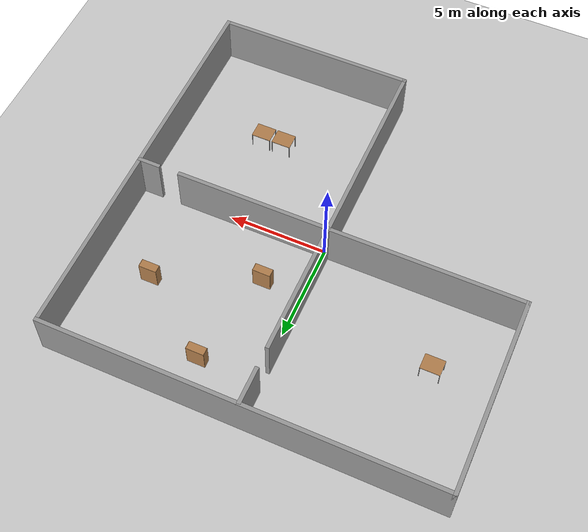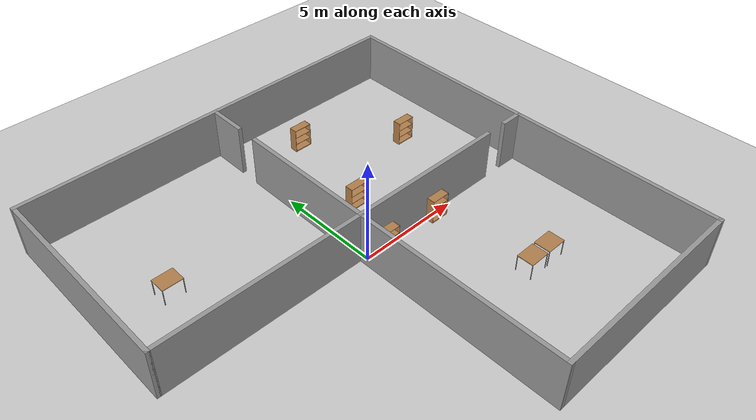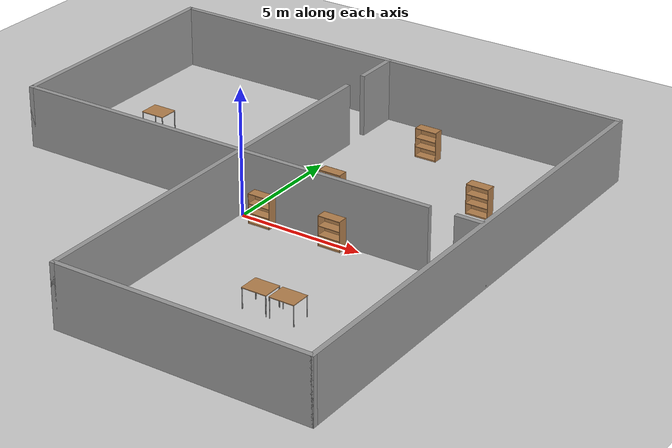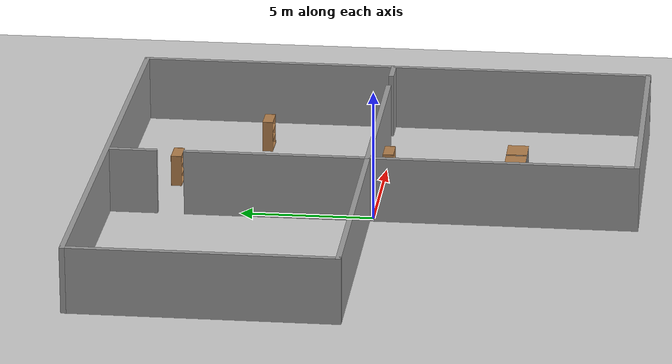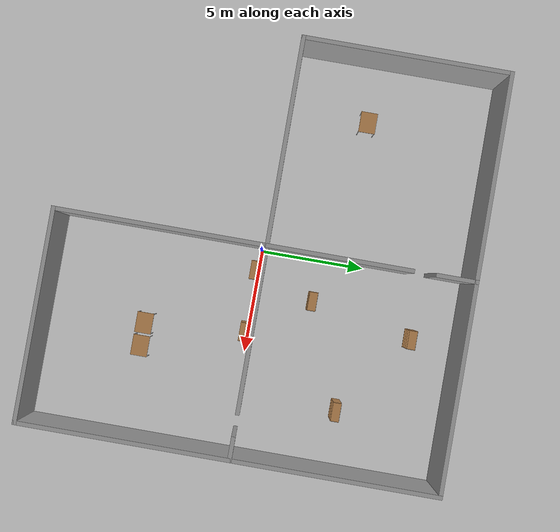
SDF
<sdf version="1.4">
 <world name="default">
  <light name="sun" type="directional">
   <pose>0 0 10 0 -0 0</pose>
   <diffuse>0.8 0.8 0.8 1</diffuse>
   <specular>0.2 0.2 0.2 1</specular>
   <attenuation>
    <range>1000</range>
    <constant>0.9</constant>
    <linear>0.01</linear>
    <quadratic>0.001</quadratic>
   </attenuation>
   <direction>-0.5 0.1 -0.9</direction>
  </light>
  <model name="ground_plane">
   <static>1</static>
   <link name="link">
    <collision name="collision">
     <geometry><plane><normal>0 0 1</normal><size>100 100</size></plane></geometry>
     <surface><friction><ode><mu>100</mu><mu2>50</mu2></ode></friction></surface>
    </collision>
    <visual name="visual">
     <cast_shadows>0</cast_shadows>
     <geometry><plane><normal>0 0 1</normal><size>100 100</size></plane></geometry>
     <material>
      <script><uri>file://media/materials/scripts/gazebo.material</uri><name>Gazebo/Grey</name></script>
     </material>
    </visual>
    <velocity_decay><linear>0</linear><angular>0</angular></velocity_decay>
   </link>
  </model>
  <physics type="ode">
   <max_step_size>0.001</max_step_size>
   <real_time_factor>1</real_time_factor>
   <real_time_update_rate>1000</real_time_update_rate>
   <gravity>0 0 -9.8</gravity>
  </physics>
  <scene><ambient>0.4 0.4 0.4 1</ambient><background>0.7 0.7 0.7 1</background><shadows>1</shadows></scene>
  <spherical_coordinates>
   <surface_model>EARTH_WGS84</surface_model>
   <latitude_deg>0</latitude_deg>
   <longitude_deg>0</longitude_deg>
   <elevation>0</elevation>
   <heading_deg>0</heading_deg>
  </spherical_coordinates>
  <model name="lshape">
   <link name="Wall_0">
    <collision name="Wall_0_Collision">
     <geometry><box><size>20 0.2 2.5</size></box></geometry>
     <pose>0 0 1.25 0 -0 0</pose>
    </collision>
    <visual name="Wall_0_Visual">
     <pose>0 0 1.25 0 -0 0</pose>
     <geometry><box><size>20 0.2 2.5</size></box></geometry>
     <material>
      <script><uri>file://media/materials/scripts/gazebo.material</uri><name>Gazebo/Grey</name></script>
     </material>
    </visual>
    <velocity_decay><linear>0</linear><angular>0</angular></velocity_decay>
    <pose>-0.1 10 0 0 -0 0</pose>
   </link>
   <link name="Wall_10">
    <collision name="Wall_10_Collision">
     <geometry><box><size>10.2 0.2 2.5</size></box></geometry>
     <pose>0 0 1.25 0 -0 0</pose>
    </collision>
    <visual name="Wall_10_Visual">
     <pose>0 0 1.25 0 -0 0</pose>
     <geometry><box><size>10.2 0.2 2.5</size></box></geometry>
     <material>
      <script><uri>file://media/materials/scripts/gazebo.material</uri><name>Gazebo/Grey</name></script>
     </material>
    </visual>
    <velocity_decay><linear>0</linear><angular>0</angular></velocity_decay>
    <pose>4.8 -9.8 0 0 -0 0</pose>
   </link>
   <link name="Wall_12">
    <collision name="Wall_12_Collision">
     <geometry><box><size>7 0.2 2.5</size></box></geometry>
     <pose>0 0 1.25 0 -0 0</pose>
    </collision>
    <visual name="Wall_12_Visual">
     <pose>0 0 1.25 0 -0 0</pose>
     <geometry><box><size>7 0.2 2.5</size></box></geometry>
     <material>
      <script><uri>file://media/materials/scripts/gazebo.material</uri><name>Gazebo/Grey</name></script>
     </material>
    </visual>
    <velocity_decay><linear>0</linear><angular>0</angular></velocity_decay>
    <pose>-0.2 3.6 0 0 -0 1.5708</pose>
   </link>
   <link name="Wall_14">
    <collision name="Wall_14_Collision">
     <geometry><box><size>2 0.2 2.5</size></box></geometry>
     <pose>0 0 1.25 0 -0 0</pose>
    </collision>
    <visual name="Wall_14_Visual">
     <pose>0 0 1.25 0 -0 0</pose>
     <geometry><box><size>2 0.2 2.5</size></box></geometry>
     <material>
      <script><uri>file://media/materials/scripts/gazebo.material</uri><name>Gazebo/Grey</name></script>
     </material>
    </visual>
    <velocity_decay><linear>0</linear><angular>0</angular></velocity_decay>
    <pose>-0.2 9.1 0 0 0 -1.5708</pose>
   </link>
   <link name="Wall_16">
    <collision name="Wall_16_Collision">
     <geometry><box><size>8 0.2 2.5</size></box></geometry>
     <pose>0 0 1.25 0 -0 0</pose>
    </collision>
    <visual name="Wall_16_Visual">
     <pose>0 0 1.25 0 -0 0</pose>
     <geometry><box><size>8 0.2 2.5</size></box></geometry>
     <material>
      <script><uri>file://media/materials/scripts/gazebo.material</uri><name>Gazebo/Grey</name></script>
     </material>
    </visual>
    <velocity_decay><linear>0</linear><angular>0</angular></velocity_decay>
    <pose>3.7 0.2 0 0 -0 0</pose>
   </link>
   <link name="Wall_18">
    <collision name="Wall_18_Collision">
     <geometry><box><size>1.2 0.2 2.5</size></box></geometry>
     <pose>0 0 1.25 0 -0 0</pose>
    </collision>
    <visual name="Wall_18_Visual">
     <pose>0 0 1.25 0 -0 0</pose>
     <geometry><box><size>1.2 0.2 2.5</size></box></geometry>
     <material>
      <script><uri>file://media/materials/scripts/gazebo.material</uri><name>Gazebo/Grey</name></script>
     </material>
    </visual>
    <velocity_decay><linear>0</linear><angular>0</angular></velocity_decay>
    <pose>9.3 0.2 0 0 -0 0</pose>
   </link>
   <link name="Wall_2">
    <collision name="Wall_2_Collision">
     <geometry><box><size>20 0.2 2.5</size></box></geometry>
     <pose>0 0 1.25 0 -0 0</pose>
    </collision>
    <visual name="Wall_2_Visual">
     <pose>0 0 1.25 0 -0 0</pose>
     <geometry><box><size>20 0.2 2.5</size></box></geometry>
     <material>
      <script><uri>file://media/materials/scripts/gazebo.material</uri><name>Gazebo/Grey</name></script>
     </material>
    </visual>
    <velocity_decay><linear>0</linear><angular>0</angular></velocity_decay>
    <pose>9.8 0.1 0 0 0 -1.5708</pose>
   </link>
   <link name="Wall_4">
    <collision name="Wall_4_Collision">
     <geometry><box><size>10 0.2 2.5</size></box></geometry>
     <pose>0 0 1.25 0 -0 0</pose>
    </collision>
    <visual name="Wall_4_Visual">
     <pose>0 0 1.25 0 -0 0</pose>
     <geometry><box><size>10 0.2 2.5</size></box></geometry>
     <material>
      <script><uri>file://media/materials/scripts/gazebo.material</uri><name>Gazebo/Grey</name></script>
     </material>
    </visual>
    <velocity_decay><linear>0</linear><angular>0</angular></velocity_decay>
    <pose>-10 5.1 0 0 0 -1.5708</pose>
   </link>
   <link name="Wall_6">
    <collision name="Wall_6_Collision">
     <geometry><box><size>10 0.2 2.5</size></box></geometry>
     <pose>0 0 1.25 0 -0 0</pose>
    </collision>
    <visual name="Wall_6_Visual">
     <pose>0 0 1.25 0 -0 0</pose>
     <geometry><box><size>10 0.2 2.5</size></box></geometry>
     <material>
      <script><uri>file://media/materials/scripts/gazebo.material</uri><name>Gazebo/Grey</name></script>
     </material>
    </visual>
    <velocity_decay><linear>0</linear><angular>0</angular></velocity_decay>
    <pose>-5.1 0.2 0 0 -0 0</pose>
   </link>
   <link name="Wall_8">
    <collision name="Wall_8_Collision">
     <geometry><box><size>10.2 0.2 2.5</size></box></geometry>
     <pose>0 0 1.25 0 -0 0</pose>
    </collision>
    <visual name="Wall_8_Visual">
     <pose>0 0 1.25 0 -0 0</pose>
     <geometry><box><size>10.2 0.2 2.5</size></box></geometry>
     <material>
      <script><uri>file://media/materials/scripts/gazebo.material</uri><name>Gazebo/Grey</name></script>
     </material>
    </visual>
    <velocity_decay><linear>0</linear><angular>0</angular></velocity_decay>
    <pose>-0.2 -4.8 0 0 0 -1.5708</pose>
   </link>
   <static>1</static>
  </model>
  <model name="table">
   <static>1</static>
   <link name="link">
    <collision name="surface">
     <pose>0 0 0.8 0 -0 0</pose>
     <geometry><box><size>1 0.8 0.03</size></box></geometry>
    </collision>
    <visual name="visual1">
     <pose>0 0 0.8 0 -0 0</pose>
     <geometry><box><size>1 0.8 0.03</size></box></geometry>
     <material>
      <script><uri>file://media/materials/scripts/gazebo.material</uri><name>Gazebo/Wood</name></script>
     </material>
    </visual>
    <collision name="front_left_leg">
     <pose>0.48 0.38 0.4 0 -0 0</pose>
     <geometry><cylinder><radius>0.02</radius><length>0.8</length></cylinder></geometry>
    </collision>
    <visual name="front_left_leg">
     <pose>0.48 0.38 0.4 0 -0 0</pose>
     <geometry><cylinder><radius>0.02</radius><length>0.8</length></cylinder></geometry>
     <material>
      <script><uri>file://media/materials/scripts/gazebo.material</uri><name>Gazebo/Grey</name></script>
     </material>
    </visual>
    <collision name="front_right_leg">
     <pose>0.48 -0.38 0.4 0 -0 0</pose>
     <geometry><cylinder><radius>0.02</radius><length>0.8</length></cylinder></geometry>
    </collision>
    <visual name="front_right_leg">
     <pose>0.48 -0.38 0.4 0 -0 0</pose>
     <geometry><cylinder><radius>0.02</radius><length>0.8</length></cylinder></geometry>
     <material>
      <script><uri>file://media/materials/scripts/gazebo.material</uri><name>Gazebo/Grey</name></script>
     </material>
    </visual>
    <collision name="back_right_leg">
     <pose>-0.48 -0.38 0.4 0 -0 0</pose>
     <geometry><cylinder><radius>0.02</radius><length>0.8</length></cylinder></geometry>
    </collision>
    <visual name="back_right_leg">
     <pose>-0.48 -0.38 0.4 0 -0 0</pose>
     <geometry><cylinder><radius>0.02</radius><length>0.8</length></cylinder></geometry>
     <material>
      <script><uri>file://media/materials/scripts/gazebo.material</uri><name>Gazebo/Grey</name></script>
     </material>
    </visual>
    <collision name="back_left_leg">
     <pose>-0.48 0.38 0.4 0 -0 0</pose>
     <geometry><cylinder><radius>0.02</radius><length>0.8</length></cylinder></geometry>
    </collision>
    <visual name="back_left_leg">
     <pose>-0.48 0.38 0.4 0 -0 0</pose>
     <geometry><cylinder><radius>0.02</radius><length>0.8</length></cylinder></geometry>
     <material>
      <script><uri>file://media/materials/scripts/gazebo.material</uri><name>Gazebo/Grey</name></script>
     </material>
    </visual>
    <velocity_decay><linear>0</linear><angular>0</angular></velocity_decay>
   </link>
   <pose>-7 4 0 0 -0 0</pose>
  </model>
  <model name="table_0">
   <static>1</static>
   <link name="link">
    <collision name="surface">
     <pose>0 0 0.8 0 -0 0</pose>
     <geometry><box><size>1 0.8 0.03</size></box></geometry>
    </collision>
    <visual name="visual1">
     <pose>0 0 0.8 0 -0 0</pose>
     <geometry><box><size>1 0.8 0.03</size></box></geometry>
     <material>
      <script><uri>file://media/materials/scripts/gazebo.material</uri><name>Gazebo/Wood</name></script>
     </material>
    </visual>
    <collision name="front_left_leg">
     <pose>0.48 0.38 0.4 0 -0 0</pose>
     <geometry><cylinder><radius>0.02</radius><length>0.8</length></cylinder></geometry>
    </collision>
    <visual name="front_left_leg">
     <pose>0.48 0.38 0.4 0 -0 0</pose>
     <geometry><cylinder><radius>0.02</radius><length>0.8</length></cylinder></geometry>
     <material>
      <script><uri>file://media/materials/scripts/gazebo.material</uri><name>Gazebo/Grey</name></script>
     </material>
    </visual>
    <collision name="front_right_leg">
     <pose>0.48 -0.38 0.4 0 -0 0</pose>
     <geometry><cylinder><radius>0.02</radius><length>0.8</length></cylinder></geometry>
    </collision>
    <visual name="front_right_leg">
     <pose>0.48 -0.38 0.4 0 -0 0</pose>
     <geometry><cylinder><radius>0.02</radius><length>0.8</length></cylinder></geometry>
     <material>
      <script><uri>file://media/materials/scripts/gazebo.material</uri><name>Gazebo/Grey</name></script>
     </material>
    </visual>
    <collision name="back_right_leg">
     <pose>-0.48 -0.38 0.4 0 -0 0</pose>
     <geometry><cylinder><radius>0.02</radius><length>0.8</length></cylinder></geometry>
    </collision>
    <visual name="back_right_leg">
     <pose>-0.48 -0.38 0.4 0 -0 0</pose>
     <geometry><cylinder><radius>0.02</radius><length>0.8</length></cylinder></geometry>
     <material>
      <script><uri>file://media/materials/scripts/gazebo.material</uri><name>Gazebo/Grey</name></script>
     </material>
    </visual>
    <collision name="back_left_leg">
     <pose>-0.48 0.38 0.4 0 -0 0</pose>
     <geometry><cylinder><radius>0.02</radius><length>0.8</length></cylinder></geometry>
    </collision>
    <visual name="back_left_leg">
     <pose>-0.48 0.38 0.4 0 -0 0</pose>
     <geometry><cylinder><radius>0.02</radius><length>0.8</length></cylinder></geometry>
     <material>
      <script><uri>file://media/materials/scripts/gazebo.material</uri><name>Gazebo/Grey</name></script>
     </material>
    </visual>
    <velocity_decay><linear>0</linear><angular>0</angular></velocity_decay>
   </link>
   <pose>5.5324 -5 0 0 -0 0</pose>
  </model>
  <model name="table_1">
   <static>1</static>
   <link name="link">
    <collision name="surface">
     <pose>0 0 0.8 0 -0 0</pose>
     <geometry><box><size>1 0.8 0.03</size></box></geometry>
    </collision>
    <visual name="visual1">
     <pose>0 0 0.8 0 -0 0</pose>
     <geometry><box><size>1 0.8 0.03</size></box></geometry>
     <material>
      <script><uri>file://media/materials/scripts/gazebo.material</uri><name>Gazebo/Wood</name></script>
     </material>
    </visual>
    <collision name="front_left_leg">
     <pose>0.48 0.38 0.4 0 -0 0</pose>
     <geometry><cylinder><radius>0.02</radius><length>0.8</length></cylinder></geometry>
    </collision>
    <visual name="front_left_leg">
     <pose>0.48 0.38 0.4 0 -0 0</pose>
     <geometry><cylinder><radius>0.02</radius><length>0.8</length></cylinder></geometry>
     <material>
      <script><uri>file://media/materials/scripts/gazebo.material</uri><name>Gazebo/Grey</name></script>
     </material>
    </visual>
    <collision name="front_right_leg">
     <pose>0.48 -0.38 0.4 0 -0 0</pose>
     <geometry><cylinder><radius>0.02</radius><length>0.8</length></cylinder></geometry>
    </collision>
    <visual name="front_right_leg">
     <pose>0.48 -0.38 0.4 0 -0 0</pose>
     <geometry><cylinder><radius>0.02</radius><length>0.8</length></cylinder></geometry>
     <material>
      <script><uri>file://media/materials/scripts/gazebo.material</uri><name>Gazebo/Grey</name></script>
     </material>
    </visual>
    <collision name="back_right_leg">
     <pose>-0.48 -0.38 0.4 0 -0 0</pose>
     <geometry><cylinder><radius>0.02</radius><length>0.8</length></cylinder></geometry>
    </collision>
    <visual name="back_right_leg">
     <pose>-0.48 -0.38 0.4 0 -0 0</pose>
     <geometry><cylinder><radius>0.02</radius><length>0.8</length></cylinder></geometry>
     <material>
      <script><uri>file://media/materials/scripts/gazebo.material</uri><name>Gazebo/Grey</name></script>
     </material>
    </visual>
    <collision name="back_left_leg">
     <pose>-0.48 0.38 0.4 0 -0 0</pose>
     <geometry><cylinder><radius>0.02</radius><length>0.8</length></cylinder></geometry>
    </collision>
    <visual name="back_left_leg">
     <pose>-0.48 0.38 0.4 0 -0 0</pose>
     <geometry><cylinder><radius>0.02</radius><length>0.8</length></cylinder></geometry>
     <material>
      <script><uri>file://media/materials/scripts/gazebo.material</uri><name>Gazebo/Grey</name></script>
     </material>
    </visual>
    <velocity_decay><linear>0</linear><angular>0</angular></velocity_decay>
   </link>
   <pose>4.42389 -5 0 0 -0 0</pose>
  </model>
  <model name="bookshelf">
   <static>1</static>
   <link name="link">
    <inertial><mass>1</mass></inertial>
    <collision name="back">
     <pose>0 0.005 0.6 0 -0 0</pose>
     <geometry><box><size>0.9 0.01 1.2</size></box></geometry>
    </collision>
    <visual name="visual1">
     <pose>0 0.005 0.6 0 -0 0</pose>
     <geometry><box><size>0.9 0.01 1.2</size></box></geometry>
     <material>
      <script><uri>file://media/materials/scripts/gazebo.material</uri><name>Gazebo/Wood</name></script>
     </material>
    </visual>
    <collision name="left_side">
     <pose>0.45 -0.195 0.6 0 -0 0</pose>
     <geometry><box><size>0.02 0.4 1.2</size></box></geometry>
    </collision>
    <visual name="visual2">
     <pose>0.45 -0.195 0.6 0 -0 0</pose>
     <geometry><box><size>0.02 0.4 1.2</size></box></geometry>
     <material>
      <script><uri>file://media/materials/scripts/gazebo.material</uri><name>Gazebo/Wood</name></script>
     </material>
    </visual>
    <collision name="right_side">
     <pose>-0.45 -0.195 0.6 0 -0 0</pose>
     <geometry><box><size>0.02 0.4 1.2</size></box></geometry>
    </collision>
    <visual name="visual3">
     <pose>-0.45 -0.195 0.6 0 -0 0</pose>
     <geometry><box><size>0.02 0.4 1.2</size></box></geometry>
     <material>
      <script><uri>file://media/materials/scripts/gazebo.material</uri><name>Gazebo/Wood</name></script>
     </material>
    </visual>
    <collision name="bottom">
     <pose>0 -0.195 0.03 0 -0 0</pose>
     <geometry><box><size>0.88 0.4 0.06</size></box></geometry>
    </collision>
    <visual name="visual4">
     <pose>0 -0.195 0.03 0 -0 0</pose>
     <geometry><box><size>0.88 0.4 0.06</size></box></geometry>
     <material>
      <script><uri>file://media/materials/scripts/gazebo.material</uri><name>Gazebo/Wood</name></script>
     </material>
    </visual>
    <collision name="top">
     <pose>0 -0.195 1.19 0 -0 0</pose>
     <geometry><box><size>0.88 0.4 0.02</size></box></geometry>
    </collision>
    <visual name="visual5">
     <pose>0 -0.195 1.19 0 -0 0</pose>
     <geometry><box><size>0.88 0.4 0.02</size></box></geometry>
     <material>
      <script><uri>file://media/materials/scripts/gazebo.material</uri><name>Gazebo/Wood</name></script>
     </material>
    </visual>
    <collision name="low_shelf">
     <pose>0 -0.195 0.43 0 -0 0</pose>
     <geometry><box><size>0.88 0.4 0.02</size></box></geometry>
    </collision>
    <visual name="visual6">
     <pose>0 -0.195 0.43 0 -0 0</pose>
     <geometry><box><size>0.88 0.4 0.02</size></box></geometry>
     <material>
      <script><uri>file://media/materials/scripts/gazebo.material</uri><name>Gazebo/Wood</name></script>
     </material>
    </visual>
    <collision name="high_shelf">
     <pose>0 -0.195 0.8 0 -0 0</pose>
     <geometry><box><size>0.88 0.4 0.02</size></box></geometry>
    </collision>
    <visual name="visual7">
     <pose>0 -0.195 0.8 0 -0 0</pose>
     <geometry><box><size>0.88 0.4 0.02</size></box></geometry>
     <material>
      <script><uri>file://media/materials/scripts/gazebo.material</uri><name>Gazebo/Wood</name></script>
     </material>
    </visual>
    <velocity_decay><linear>0</linear><angular>0</angular></velocity_decay>
   </link>
   <pose>1 0 0 0 -0 0</pose>
  </model>
  <model name="bookshelf_0">
   <static>1</static>
   <link name="link">
    <inertial><mass>1</mass></inertial>
    <collision name="back">
     <pose>0 0.005 0.6 0 -0 0</pose>
     <geometry><box><size>0.9 0.01 1.2</size></box></geometry>
    </collision>
    <visual name="visual1">
     <pose>0 0.005 0.6 0 -0 0</pose>
     <geometry><box><size>0.9 0.01 1.2</size></box></geometry>
     <material>
      <script><uri>file://media/materials/scripts/gazebo.material</uri><name>Gazebo/Wood</name></script>
     </material>
    </visual>
    <collision name="left_side">
     <pose>0.45 -0.195 0.6 0 -0 0</pose>
     <geometry><box><size>0.02 0.4 1.2</size></box></geometry>
    </collision>
    <visual name="visual2">
     <pose>0.45 -0.195 0.6 0 -0 0</pose>
     <geometry><box><size>0.02 0.4 1.2</size></box></geometry>
     <material>
      <script><uri>file://media/materials/scripts/gazebo.material</uri><name>Gazebo/Wood</name></script>
     </material>
    </visual>
    <collision name="right_side">
     <pose>-0.45 -0.195 0.6 0 -0 0</pose>
     <geometry><box><size>0.02 0.4 1.2</size></box></geometry>
    </collision>
    <visual name="visual3">
     <pose>-0.45 -0.195 0.6 0 -0 0</pose>
     <geometry><box><size>0.02 0.4 1.2</size></box></geometry>
     <material>
      <script><uri>file://media/materials/scripts/gazebo.material</uri><name>Gazebo/Wood</name></script>
     </material>
    </visual>
    <collision name="bottom">
     <pose>0 -0.195 0.03 0 -0 0</pose>
     <geometry><box><size>0.88 0.4 0.06</size></box></geometry>
    </collision>
    <visual name="visual4">
     <pose>0 -0.195 0.03 0 -0 0</pose>
     <geometry><box><size>0.88 0.4 0.06</size></box></geometry>
     <material>
      <script><uri>file://media/materials/scripts/gazebo.material</uri><name>Gazebo/Wood</name></script>
     </material>
    </visual>
    <collision name="top">
     <pose>0 -0.195 1.19 0 -0 0</pose>
     <geometry><box><size>0.88 0.4 0.02</size></box></geometry>
    </collision>
    <visual name="visual5">
     <pose>0 -0.195 1.19 0 -0 0</pose>
     <geometry><box><size>0.88 0.4 0.02</size></box></geometry>
     <material>
      <script><uri>file://media/materials/scripts/gazebo.material</uri><name>Gazebo/Wood</name></script>
     </material>
    </visual>
    <collision name="low_shelf">
     <pose>0 -0.195 0.43 0 -0 0</pose>
     <geometry><box><size>0.88 0.4 0.02</size></box></geometry>
    </collision>
    <visual name="visual6">
     <pose>0 -0.195 0.43 0 -0 0</pose>
     <geometry><box><size>0.88 0.4 0.02</size></box></geometry>
     <material>
      <script><uri>file://media/materials/scripts/gazebo.material</uri><name>Gazebo/Wood</name></script>
     </material>
    </visual>
    <collision name="high_shelf">
     <pose>0 -0.195 0.8 0 -0 0</pose>
     <geometry><box><size>0.88 0.4 0.02</size></box></geometry>
    </collision>
    <visual name="visual7">
     <pose>0 -0.195 0.8 0 -0 0</pose>
     <geometry><box><size>0.88 0.4 0.02</size></box></geometry>
     <material>
      <script><uri>file://media/materials/scripts/gazebo.material</uri><name>Gazebo/Wood</name></script>
     </material>
    </visual>
    <velocity_decay><linear>0</linear><angular>0</angular></velocity_decay>
   </link>
   <pose>4 0 0 0 -0 0</pose>
  </model>
  <model name="bookshelf_1">
   <static>1</static>
   <link name="link">
    <inertial><mass>1</mass></inertial>
    <collision name="back">
     <pose>0 0.005 0.6 0 -0 0</pose>
     <geometry><box><size>0.9 0.01 1.2</size></box></geometry>
    </collision>
    <visual name="visual1">
     <pose>0 0.005 0.6 0 -0 0</pose>
     <geometry><box><size>0.9 0.01 1.2</size></box></geometry>
     <material>
      <script><uri>file://media/materials/scripts/gazebo.material</uri><name>Gazebo/Wood</name></script>
     </material>
    </visual>
    <collision name="left_side">
     <pose>0.45 -0.195 0.6 0 -0 0</pose>
     <geometry><box><size>0.02 0.4 1.2</size></box></geometry>
    </collision>
    <visual name="visual2">
     <pose>0.45 -0.195 0.6 0 -0 0</pose>
     <geometry><box><size>0.02 0.4 1.2</size></box></geometry>
     <material>
      <script><uri>file://media/materials/scripts/gazebo.material</uri><name>Gazebo/Wood</name></script>
     </material>
    </visual>
    <collision name="right_side">
     <pose>-0.45 -0.195 0.6 0 -0 0</pose>
     <geometry><box><size>0.02 0.4 1.2</size></box></geometry>
    </collision>
    <visual name="visual3">
     <pose>-0.45 -0.195 0.6 0 -0 0</pose>
     <geometry><box><size>0.02 0.4 1.2</size></box></geometry>
     <material>
      <script><uri>file://media/materials/scripts/gazebo.material</uri><name>Gazebo/Wood</name></script>
     </material>
    </visual>
    <collision name="bottom">
     <pose>0 -0.195 0.03 0 -0 0</pose>
     <geometry><box><size>0.88 0.4 0.06</size></box></geometry>
    </collision>
    <visual name="visual4">
     <pose>0 -0.195 0.03 0 -0 0</pose>
     <geometry><box><size>0.88 0.4 0.06</size></box></geometry>
     <material>
      <script><uri>file://media/materials/scripts/gazebo.material</uri><name>Gazebo/Wood</name></script>
     </material>
    </visual>
    <collision name="top">
     <pose>0 -0.195 1.19 0 -0 0</pose>
     <geometry><box><size>0.88 0.4 0.02</size></box></geometry>
    </collision>
    <visual name="visual5">
     <pose>0 -0.195 1.19 0 -0 0</pose>
     <geometry><box><size>0.88 0.4 0.02</size></box></geometry>
     <material>
      <script><uri>file://media/materials/scripts/gazebo.material</uri><name>Gazebo/Wood</name></script>
     </material>
    </visual>
    <collision name="low_shelf">
     <pose>0 -0.195 0.43 0 -0 0</pose>
     <geometry><box><size>0.88 0.4 0.02</size></box></geometry>
    </collision>
    <visual name="visual6">
     <pose>0 -0.195 0.43 0 -0 0</pose>
     <geometry><box><size>0.88 0.4 0.02</size></box></geometry>
     <material>
      <script><uri>file://media/materials/scripts/gazebo.material</uri><name>Gazebo/Wood</name></script>
     </material>
    </visual>
    <collision name="high_shelf">
     <pose>0 -0.195 0.8 0 -0 0</pose>
     <geometry><box><size>0.88 0.4 0.02</size></box></geometry>
    </collision>
    <visual name="visual7">
     <pose>0 -0.195 0.8 0 -0 0</pose>
     <geometry><box><size>0.88 0.4 0.02</size></box></geometry>
     <material>
      <script><uri>file://media/materials/scripts/gazebo.material</uri><name>Gazebo/Wood</name></script>
     </material>
    </visual>
    <velocity_decay><linear>0</linear><angular>0</angular></velocity_decay>
   </link>
   <pose>3 8 0 0 -0 0</pose>
  </model>
  <model name="bookshelf_2">
   <static>1</static>
   <link name="link">
    <inertial><mass>1</mass></inertial>
    <collision name="back">
     <pose>0 0.005 0.6 0 -0 0</pose>
     <geometry><box><size>0.9 0.01 1.2</size></box></geometry>
    </collision>
    <visual name="visual1">
     <pose>0 0.005 0.6 0 -0 0</pose>
     <geometry><box><size>0.9 0.01 1.2</size></box></geometry>
     <material>
      <script><uri>file://media/materials/scripts/gazebo.material</uri><name>Gazebo/Wood</name></script>
     </material>
    </visual>
    <collision name="left_side">
     <pose>0.45 -0.195 0.6 0 -0 0</pose>
     <geometry><box><size>0.02 0.4 1.2</size></box></geometry>
    </collision>
    <visual name="visual2">
     <pose>0.45 -0.195 0.6 0 -0 0</pose>
     <geometry><box><size>0.02 0.4 1.2</size></box></geometry>
     <material>
      <script><uri>file://media/materials/scripts/gazebo.material</uri><name>Gazebo/Wood</name></script>
     </material>
    </visual>
    <collision name="right_side">
     <pose>-0.45 -0.195 0.6 0 -0 0</pose>
     <geometry><box><size>0.02 0.4 1.2</size></box></geometry>
    </collision>
    <visual name="visual3">
     <pose>-0.45 -0.195 0.6 0 -0 0</pose>
     <geometry><box><size>0.02 0.4 1.2</size></box></geometry>
     <material>
      <script><uri>file://media/materials/scripts/gazebo.material</uri><name>Gazebo/Wood</name></script>
     </material>
    </visual>
    <collision name="bottom">
     <pose>0 -0.195 0.03 0 -0 0</pose>
     <geometry><box><size>0.88 0.4 0.06</size></box></geometry>
    </collision>
    <visual name="visual4">
     <pose>0 -0.195 0.03 0 -0 0</pose>
     <geometry><box><size>0.88 0.4 0.06</size></box></geometry>
     <material>
      <script><uri>file://media/materials/scripts/gazebo.material</uri><name>Gazebo/Wood</name></script>
     </material>
    </visual>
    <collision name="top">
     <pose>0 -0.195 1.19 0 -0 0</pose>
     <geometry><box><size>0.88 0.4 0.02</size></box></geometry>
    </collision>
    <visual name="visual5">
     <pose>0 -0.195 1.19 0 -0 0</pose>
     <geometry><box><size>0.88 0.4 0.02</size></box></geometry>
     <material>
      <script><uri>file://media/materials/scripts/gazebo.material</uri><name>Gazebo/Wood</name></script>
     </material>
    </visual>
    <collision name="low_shelf">
     <pose>0 -0.195 0.43 0 -0 0</pose>
     <geometry><box><size>0.88 0.4 0.02</size></box></geometry>
    </collision>
    <visual name="visual6">
     <pose>0 -0.195 0.43 0 -0 0</pose>
     <geometry><box><size>0.88 0.4 0.02</size></box></geometry>
     <material>
      <script><uri>file://media/materials/scripts/gazebo.material</uri><name>Gazebo/Wood</name></script>
     </material>
    </visual>
    <collision name="high_shelf">
     <pose>0 -0.195 0.8 0 -0 0</pose>
     <geometry><box><size>0.88 0.4 0.02</size></box></geometry>
    </collision>
    <visual name="visual7">
     <pose>0 -0.195 0.8 0 -0 0</pose>
     <geometry><box><size>0.88 0.4 0.02</size></box></geometry>
     <material>
      <script><uri>file://media/materials/scripts/gazebo.material</uri><name>Gazebo/Wood</name></script>
     </material>
    </visual>
    <velocity_decay><linear>0</linear><angular>0</angular></velocity_decay>
   </link>
   <pose>7 5 0 0 -0 0</pose>
  </model>
  <model name="bookshelf_3">
   <static>1</static>
   <link name="link">
    <inertial><mass>1</mass></inertial>
    <collision name="back">
     <pose>0 0.005 0.6 0 -0 0</pose>
     <geometry><box><size>0.9 0.01 1.2</size></box></geometry>
    </collision>
    <visual name="visual1">
     <pose>0 0.005 0.6 0 -0 0</pose>
     <geometry><box><size>0.9 0.01 1.2</size></box></geometry>
     <material>
      <script><uri>file://media/materials/scripts/gazebo.material</uri><name>Gazebo/Wood</name></script>
     </material>
    </visual>
    <collision name="left_side">
     <pose>0.45 -0.195 0.6 0 -0 0</pose>
     <geometry><box><size>0.02 0.4 1.2</size></box></geometry>
    </collision>
    <visual name="visual2">
     <pose>0.45 -0.195 0.6 0 -0 0</pose>
     <geometry><box><size>0.02 0.4 1.2</size></box></geometry>
     <material>
      <script><uri>file://media/materials/scripts/gazebo.material</uri><name>Gazebo/Wood</name></script>
     </material>
    </visual>
    <collision name="right_side">
     <pose>-0.45 -0.195 0.6 0 -0 0</pose>
     <geometry><box><size>0.02 0.4 1.2</size></box></geometry>
    </collision>
    <visual name="visual3">
     <pose>-0.45 -0.195 0.6 0 -0 0</pose>
     <geometry><box><size>0.02 0.4 1.2</size></box></geometry>
     <material>
      <script><uri>file://media/materials/scripts/gazebo.material</uri><name>Gazebo/Wood</name></script>
     </material>
    </visual>
    <collision name="bottom">
     <pose>0 -0.195 0.03 0 -0 0</pose>
     <geometry><box><size>0.88 0.4 0.06</size></box></geometry>
    </collision>
    <visual name="visual4">
     <pose>0 -0.195 0.03 0 -0 0</pose>
     <geometry><box><size>0.88 0.4 0.06</size></box></geometry>
     <material>
      <script><uri>file://media/materials/scripts/gazebo.material</uri><name>Gazebo/Wood</name></script>
     </material>
    </visual>
    <collision name="top">
     <pose>0 -0.195 1.19 0 -0 0</pose>
     <geometry><box><size>0.88 0.4 0.02</size></box></geometry>
    </collision>
    <visual name="visual5">
     <pose>0 -0.195 1.19 0 -0 0</pose>
     <geometry><box><size>0.88 0.4 0.02</size></box></geometry>
     <material>
      <script><uri>file://media/materials/scripts/gazebo.material</uri><name>Gazebo/Wood</name></script>
     </material>
    </visual>
    <collision name="low_shelf">
     <pose>0 -0.195 0.43 0 -0 0</pose>
     <geometry><box><size>0.88 0.4 0.02</size></box></geometry>
    </collision>
    <visual name="visual6">
     <pose>0 -0.195 0.43 0 -0 0</pose>
     <geometry><box><size>0.88 0.4 0.02</size></box></geometry>
     <material>
      <script><uri>file://media/materials/scripts/gazebo.material</uri><name>Gazebo/Wood</name></script>
     </material>
    </visual>
    <collision name="high_shelf">
     <pose>0 -0.195 0.8 0 -0 0</pose>
     <geometry><box><size>0.88 0.4 0.02</size></box></geometry>
    </collision>
    <visual name="visual7">
     <pose>0 -0.195 0.8 0 -0 0</pose>
     <geometry><box><size>0.88 0.4 0.02</size></box></geometry>
     <material>
      <script><uri>file://media/materials/scripts/gazebo.material</uri><name>Gazebo/Wood</name></script>
     </material>
    </visual>
    <velocity_decay><linear>0</linear><angular>0</angular></velocity_decay>
   </link>
   <pose>2 3 0 0 -0 0</pose>
  </model>
 </world>
</sdf>
